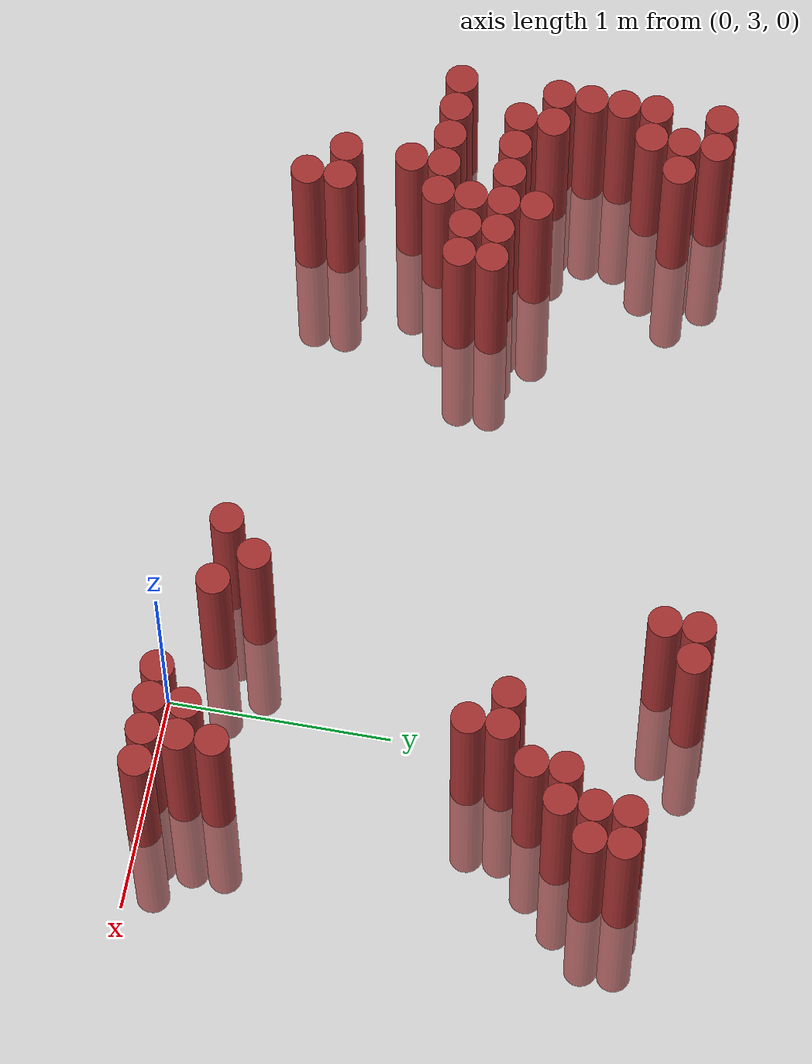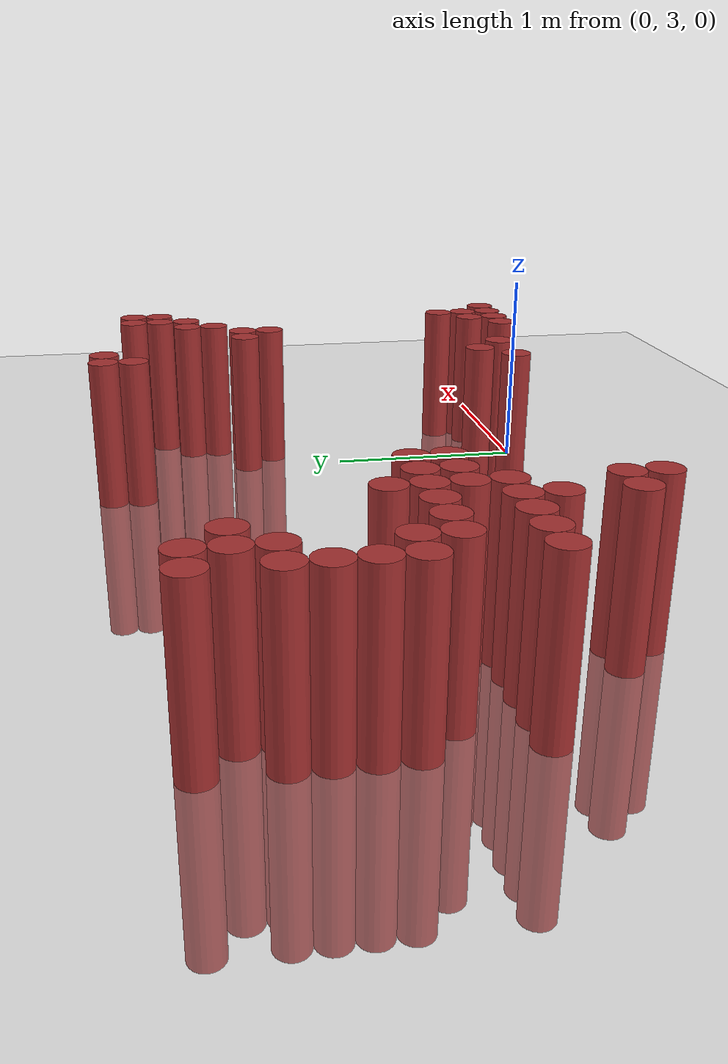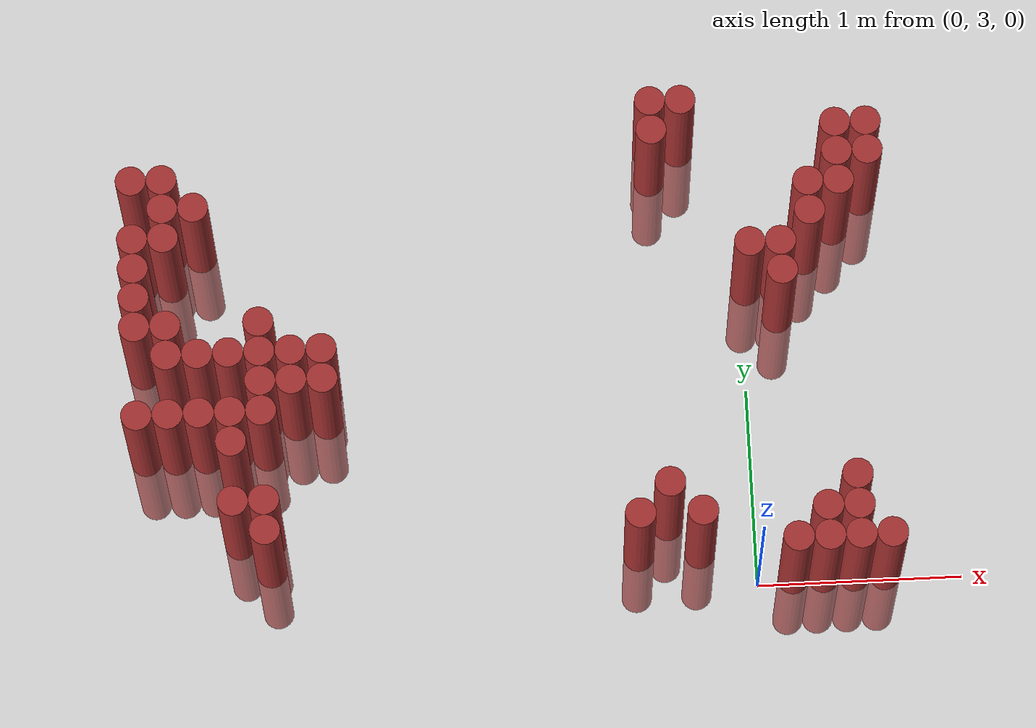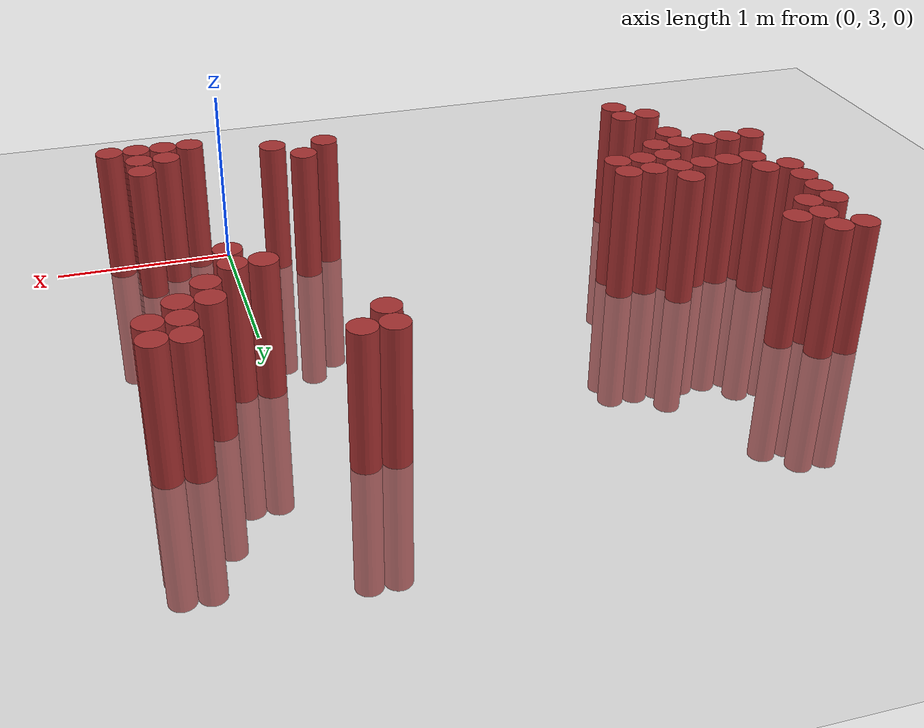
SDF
<sdf version="1.6">
 <world name="default">
  <model name="ground_plane">
   <static>1</static>
   <link name="link">
    <collision name="collision">
     <geometry><plane><normal>0 0 1</normal><size>100 100</size></plane></geometry>
     <surface><friction><ode><mu>100</mu><mu2>50</mu2></ode></friction></surface>
    </collision>
    <visual name="visual">
     <cast_shadows>0</cast_shadows>
     <geometry><plane><normal>0 0 1</normal><size>100 100</size></plane></geometry>
     <material>
      <script><uri>file://media/materials/scripts/gazebo.material</uri><name>Gazebo/Grey</name></script>
     </material>
    </visual>
   </link>
  </model>
  <model name="unit_cylinder_283">
   <static>1</static>
   <pose>-2.975000 3.775000 0.000000 0.000000 0.000000 0.000000</pose>
   <link name="link">
    <inertial>
     <mass>1</mass>
     <inertia><ixx>0.145833</ixx><ixy>0</ixy><ixz>0</ixz><iyy>0.145833</iyy><iyz>0</iyz><izz>0.125</izz></inertia>
    </inertial>
    <collision name="collision">
     <geometry><cylinder><radius>0.075000</radius><length>1.5</length></cylinder></geometry>
    </collision>
    <visual name="visual">
     <geometry><cylinder><radius>0.075000</radius><length>1.5</length></cylinder></geometry>
     <material>
      <ambient>0.648000 0.192000 0.192000 1</ambient>
      <diffuse>0.648000 0.192000 0.192000 1</diffuse>
     </material>
     <material>
      <script><name>Gazebo/Grey</name><uri>file://media/materials/scripts/gazebo.material</uri></script>
     </material>
    </visual>
   </link>
  </model>
  <model name="unit_cylinder_284">
   <static>1</static>
   <pose>-2.975000 4.225000 0.000000 0.000000 0.000000 0.000000</pose>
   <link name="link">
    <inertial>
     <mass>1</mass>
     <inertia><ixx>0.145833</ixx><ixy>0</ixy><ixz>0</ixz><iyy>0.145833</iyy><iyz>0</iyz><izz>0.125</izz></inertia>
    </inertial>
    <collision name="collision">
     <geometry><cylinder><radius>0.075000</radius><length>1.5</length></cylinder></geometry>
    </collision>
    <visual name="visual">
     <geometry><cylinder><radius>0.075000</radius><length>1.5</length></cylinder></geometry>
     <material>
      <ambient>0.648000 0.192000 0.192000 1</ambient>
      <diffuse>0.648000 0.192000 0.192000 1</diffuse>
     </material>
     <material>
      <script><name>Gazebo/Grey</name><uri>file://media/materials/scripts/gazebo.material</uri></script>
     </material>
    </visual>
   </link>
  </model>
  <model name="unit_cylinder_285">
   <static>1</static>
   <pose>-2.975000 4.375000 0.000000 0.000000 0.000000 0.000000</pose>
   <link name="link">
    <inertial>
     <mass>1</mass>
     <inertia><ixx>0.145833</ixx><ixy>0</ixy><ixz>0</ixz><iyy>0.145833</iyy><iyz>0</iyz><izz>0.125</izz></inertia>
    </inertial>
    <collision name="collision">
     <geometry><cylinder><radius>0.075000</radius><length>1.5</length></cylinder></geometry>
    </collision>
    <visual name="visual">
     <geometry><cylinder><radius>0.075000</radius><length>1.5</length></cylinder></geometry>
     <material>
      <ambient>0.648000 0.192000 0.192000 1</ambient>
      <diffuse>0.648000 0.192000 0.192000 1</diffuse>
     </material>
     <material>
      <script><name>Gazebo/Grey</name><uri>file://media/materials/scripts/gazebo.material</uri></script>
     </material>
    </visual>
   </link>
  </model>
  <model name="unit_cylinder_286">
   <static>1</static>
   <pose>-2.975000 4.525000 0.000000 0.000000 0.000000 0.000000</pose>
   <link name="link">
    <inertial>
     <mass>1</mass>
     <inertia><ixx>0.145833</ixx><ixy>0</ixy><ixz>0</ixz><iyy>0.145833</iyy><iyz>0</iyz><izz>0.125</izz></inertia>
    </inertial>
    <collision name="collision">
     <geometry><cylinder><radius>0.075000</radius><length>1.5</length></cylinder></geometry>
    </collision>
    <visual name="visual">
     <geometry><cylinder><radius>0.075000</radius><length>1.5</length></cylinder></geometry>
     <material>
      <ambient>0.648000 0.192000 0.192000 1</ambient>
      <diffuse>0.648000 0.192000 0.192000 1</diffuse>
     </material>
     <material>
      <script><name>Gazebo/Grey</name><uri>file://media/materials/scripts/gazebo.material</uri></script>
     </material>
    </visual>
   </link>
  </model>
  <model name="unit_cylinder_287">
   <static>1</static>
   <pose>-2.975000 4.675000 0.000000 0.000000 0.000000 0.000000</pose>
   <link name="link">
    <inertial>
     <mass>1</mass>
     <inertia><ixx>0.145833</ixx><ixy>0</ixy><ixz>0</ixz><iyy>0.145833</iyy><iyz>0</iyz><izz>0.125</izz></inertia>
    </inertial>
    <collision name="collision">
     <geometry><cylinder><radius>0.075000</radius><length>1.5</length></cylinder></geometry>
    </collision>
    <visual name="visual">
     <geometry><cylinder><radius>0.075000</radius><length>1.5</length></cylinder></geometry>
     <material>
      <ambient>0.648000 0.192000 0.192000 1</ambient>
      <diffuse>0.648000 0.192000 0.192000 1</diffuse>
     </material>
     <material>
      <script><name>Gazebo/Grey</name><uri>file://media/materials/scripts/gazebo.material</uri></script>
     </material>
    </visual>
   </link>
  </model>
  <model name="unit_cylinder_288">
   <static>1</static>
   <pose>-2.975000 4.975000 0.000000 0.000000 0.000000 0.000000</pose>
   <link name="link">
    <inertial>
     <mass>1</mass>
     <inertia><ixx>0.145833</ixx><ixy>0</ixy><ixz>0</ixz><iyy>0.145833</iyy><iyz>0</iyz><izz>0.125</izz></inertia>
    </inertial>
    <collision name="collision">
     <geometry><cylinder><radius>0.075000</radius><length>1.5</length></cylinder></geometry>
    </collision>
    <visual name="visual">
     <geometry><cylinder><radius>0.075000</radius><length>1.5</length></cylinder></geometry>
     <material>
      <ambient>0.648000 0.192000 0.192000 1</ambient>
      <diffuse>0.648000 0.192000 0.192000 1</diffuse>
     </material>
     <material>
      <script><name>Gazebo/Grey</name><uri>file://media/materials/scripts/gazebo.material</uri></script>
     </material>
    </visual>
   </link>
  </model>
  <model name="unit_cylinder_289">
   <static>1</static>
   <pose>-2.825000 3.775000 0.000000 0.000000 0.000000 0.000000</pose>
   <link name="link">
    <inertial>
     <mass>1</mass>
     <inertia><ixx>0.145833</ixx><ixy>0</ixy><ixz>0</ixz><iyy>0.145833</iyy><iyz>0</iyz><izz>0.125</izz></inertia>
    </inertial>
    <collision name="collision">
     <geometry><cylinder><radius>0.075000</radius><length>1.5</length></cylinder></geometry>
    </collision>
    <visual name="visual">
     <geometry><cylinder><radius>0.075000</radius><length>1.5</length></cylinder></geometry>
     <material>
      <ambient>0.648000 0.192000 0.192000 1</ambient>
      <diffuse>0.648000 0.192000 0.192000 1</diffuse>
     </material>
     <material>
      <script><name>Gazebo/Grey</name><uri>file://media/materials/scripts/gazebo.material</uri></script>
     </material>
    </visual>
   </link>
  </model>
  <model name="unit_cylinder_290">
   <static>1</static>
   <pose>-2.825000 4.075000 0.000000 0.000000 0.000000 0.000000</pose>
   <link name="link">
    <inertial>
     <mass>1</mass>
     <inertia><ixx>0.145833</ixx><ixy>0</ixy><ixz>0</ixz><iyy>0.145833</iyy><iyz>0</iyz><izz>0.125</izz></inertia>
    </inertial>
    <collision name="collision">
     <geometry><cylinder><radius>0.075000</radius><length>1.5</length></cylinder></geometry>
    </collision>
    <visual name="visual">
     <geometry><cylinder><radius>0.075000</radius><length>1.5</length></cylinder></geometry>
     <material>
      <ambient>0.648000 0.192000 0.192000 1</ambient>
      <diffuse>0.648000 0.192000 0.192000 1</diffuse>
     </material>
     <material>
      <script><name>Gazebo/Grey</name><uri>file://media/materials/scripts/gazebo.material</uri></script>
     </material>
    </visual>
   </link>
  </model>
  <model name="unit_cylinder_291">
   <static>1</static>
   <pose>-2.825000 4.225000 0.000000 0.000000 0.000000 0.000000</pose>
   <link name="link">
    <inertial>
     <mass>1</mass>
     <inertia><ixx>0.145833</ixx><ixy>0</ixy><ixz>0</ixz><iyy>0.145833</iyy><iyz>0</iyz><izz>0.125</izz></inertia>
    </inertial>
    <collision name="collision">
     <geometry><cylinder><radius>0.075000</radius><length>1.5</length></cylinder></geometry>
    </collision>
    <visual name="visual">
     <geometry><cylinder><radius>0.075000</radius><length>1.5</length></cylinder></geometry>
     <material>
      <ambient>0.648000 0.192000 0.192000 1</ambient>
      <diffuse>0.648000 0.192000 0.192000 1</diffuse>
     </material>
     <material>
      <script><name>Gazebo/Grey</name><uri>file://media/materials/scripts/gazebo.material</uri></script>
     </material>
    </visual>
   </link>
  </model>
  <model name="unit_cylinder_292">
   <static>1</static>
   <pose>-2.825000 4.675000 0.000000 0.000000 0.000000 0.000000</pose>
   <link name="link">
    <inertial>
     <mass>1</mass>
     <inertia><ixx>0.145833</ixx><ixy>0</ixy><ixz>0</ixz><iyy>0.145833</iyy><iyz>0</iyz><izz>0.125</izz></inertia>
    </inertial>
    <collision name="collision">
     <geometry><cylinder><radius>0.075000</radius><length>1.5</length></cylinder></geometry>
    </collision>
    <visual name="visual">
     <geometry><cylinder><radius>0.075000</radius><length>1.5</length></cylinder></geometry>
     <material>
      <ambient>0.648000 0.192000 0.192000 1</ambient>
      <diffuse>0.648000 0.192000 0.192000 1</diffuse>
     </material>
     <material>
      <script><name>Gazebo/Grey</name><uri>file://media/materials/scripts/gazebo.material</uri></script>
     </material>
    </visual>
   </link>
  </model>
  <model name="unit_cylinder_293">
   <static>1</static>
   <pose>-2.825000 4.825000 0.000000 0.000000 0.000000 0.000000</pose>
   <link name="link">
    <inertial>
     <mass>1</mass>
     <inertia><ixx>0.145833</ixx><ixy>0</ixy><ixz>0</ixz><iyy>0.145833</iyy><iyz>0</iyz><izz>0.125</izz></inertia>
    </inertial>
    <collision name="collision">
     <geometry><cylinder><radius>0.075000</radius><length>1.5</length></cylinder></geometry>
    </collision>
    <visual name="visual">
     <geometry><cylinder><radius>0.075000</radius><length>1.5</length></cylinder></geometry>
     <material>
      <ambient>0.648000 0.192000 0.192000 1</ambient>
      <diffuse>0.648000 0.192000 0.192000 1</diffuse>
     </material>
     <material>
      <script><name>Gazebo/Grey</name><uri>file://media/materials/scripts/gazebo.material</uri></script>
     </material>
    </visual>
   </link>
  </model>
  <model name="unit_cylinder_294">
   <static>1</static>
   <pose>-2.825000 4.975000 0.000000 0.000000 0.000000 0.000000</pose>
   <link name="link">
    <inertial>
     <mass>1</mass>
     <inertia><ixx>0.145833</ixx><ixy>0</ixy><ixz>0</ixz><iyy>0.145833</iyy><iyz>0</iyz><izz>0.125</izz></inertia>
    </inertial>
    <collision name="collision">
     <geometry><cylinder><radius>0.075000</radius><length>1.5</length></cylinder></geometry>
    </collision>
    <visual name="visual">
     <geometry><cylinder><radius>0.075000</radius><length>1.5</length></cylinder></geometry>
     <material>
      <ambient>0.648000 0.192000 0.192000 1</ambient>
      <diffuse>0.648000 0.192000 0.192000 1</diffuse>
     </material>
     <material>
      <script><name>Gazebo/Grey</name><uri>file://media/materials/scripts/gazebo.material</uri></script>
     </material>
    </visual>
   </link>
  </model>
  <model name="unit_cylinder_295">
   <static>1</static>
   <pose>-2.675000 3.775000 0.000000 0.000000 0.000000 0.000000</pose>
   <link name="link">
    <inertial>
     <mass>1</mass>
     <inertia><ixx>0.145833</ixx><ixy>0</ixy><ixz>0</ixz><iyy>0.145833</iyy><iyz>0</iyz><izz>0.125</izz></inertia>
    </inertial>
    <collision name="collision">
     <geometry><cylinder><radius>0.075000</radius><length>1.5</length></cylinder></geometry>
    </collision>
    <visual name="visual">
     <geometry><cylinder><radius>0.075000</radius><length>1.5</length></cylinder></geometry>
     <material>
      <ambient>0.648000 0.192000 0.192000 1</ambient>
      <diffuse>0.648000 0.192000 0.192000 1</diffuse>
     </material>
     <material>
      <script><name>Gazebo/Grey</name><uri>file://media/materials/scripts/gazebo.material</uri></script>
     </material>
    </visual>
   </link>
  </model>
  <model name="unit_cylinder_296">
   <static>1</static>
   <pose>-2.675000 4.075000 0.000000 0.000000 0.000000 0.000000</pose>
   <link name="link">
    <inertial>
     <mass>1</mass>
     <inertia><ixx>0.145833</ixx><ixy>0</ixy><ixz>0</ixz><iyy>0.145833</iyy><iyz>0</iyz><izz>0.125</izz></inertia>
    </inertial>
    <collision name="collision">
     <geometry><cylinder><radius>0.075000</radius><length>1.5</length></cylinder></geometry>
    </collision>
    <visual name="visual">
     <geometry><cylinder><radius>0.075000</radius><length>1.5</length></cylinder></geometry>
     <material>
      <ambient>0.648000 0.192000 0.192000 1</ambient>
      <diffuse>0.648000 0.192000 0.192000 1</diffuse>
     </material>
     <material>
      <script><name>Gazebo/Grey</name><uri>file://media/materials/scripts/gazebo.material</uri></script>
     </material>
    </visual>
   </link>
  </model>
  <model name="unit_cylinder_297">
   <static>1</static>
   <pose>-2.675000 4.825000 0.000000 0.000000 0.000000 0.000000</pose>
   <link name="link">
    <inertial>
     <mass>1</mass>
     <inertia><ixx>0.145833</ixx><ixy>0</ixy><ixz>0</ixz><iyy>0.145833</iyy><iyz>0</iyz><izz>0.125</izz></inertia>
    </inertial>
    <collision name="collision">
     <geometry><cylinder><radius>0.075000</radius><length>1.5</length></cylinder></geometry>
    </collision>
    <visual name="visual">
     <geometry><cylinder><radius>0.075000</radius><length>1.5</length></cylinder></geometry>
     <material>
      <ambient>0.648000 0.192000 0.192000 1</ambient>
      <diffuse>0.648000 0.192000 0.192000 1</diffuse>
     </material>
     <material>
      <script><name>Gazebo/Grey</name><uri>file://media/materials/scripts/gazebo.material</uri></script>
     </material>
    </visual>
   </link>
  </model>
  <model name="unit_cylinder_298">
   <static>1</static>
   <pose>-2.525000 3.325000 0.000000 0.000000 0.000000 0.000000</pose>
   <link name="link">
    <inertial>
     <mass>1</mass>
     <inertia><ixx>0.145833</ixx><ixy>0</ixy><ixz>0</ixz><iyy>0.145833</iyy><iyz>0</iyz><izz>0.125</izz></inertia>
    </inertial>
    <collision name="collision">
     <geometry><cylinder><radius>0.075000</radius><length>1.5</length></cylinder></geometry>
    </collision>
    <visual name="visual">
     <geometry><cylinder><radius>0.075000</radius><length>1.5</length></cylinder></geometry>
     <material>
      <ambient>0.648000 0.192000 0.192000 1</ambient>
      <diffuse>0.648000 0.192000 0.192000 1</diffuse>
     </material>
     <material>
      <script><name>Gazebo/Grey</name><uri>file://media/materials/scripts/gazebo.material</uri></script>
     </material>
    </visual>
   </link>
  </model>
  <model name="unit_cylinder_299">
   <static>1</static>
   <pose>-2.525000 3.625000 0.000000 0.000000 0.000000 0.000000</pose>
   <link name="link">
    <inertial>
     <mass>1</mass>
     <inertia><ixx>0.145833</ixx><ixy>0</ixy><ixz>0</ixz><iyy>0.145833</iyy><iyz>0</iyz><izz>0.125</izz></inertia>
    </inertial>
    <collision name="collision">
     <geometry><cylinder><radius>0.075000</radius><length>1.5</length></cylinder></geometry>
    </collision>
    <visual name="visual">
     <geometry><cylinder><radius>0.075000</radius><length>1.5</length></cylinder></geometry>
     <material>
      <ambient>0.648000 0.192000 0.192000 1</ambient>
      <diffuse>0.648000 0.192000 0.192000 1</diffuse>
     </material>
     <material>
      <script><name>Gazebo/Grey</name><uri>file://media/materials/scripts/gazebo.material</uri></script>
     </material>
    </visual>
   </link>
  </model>
  <model name="unit_cylinder_300">
   <static>1</static>
   <pose>-2.525000 3.775000 0.000000 0.000000 0.000000 0.000000</pose>
   <link name="link">
    <inertial>
     <mass>1</mass>
     <inertia><ixx>0.145833</ixx><ixy>0</ixy><ixz>0</ixz><iyy>0.145833</iyy><iyz>0</iyz><izz>0.125</izz></inertia>
    </inertial>
    <collision name="collision">
     <geometry><cylinder><radius>0.075000</radius><length>1.5</length></cylinder></geometry>
    </collision>
    <visual name="visual">
     <geometry><cylinder><radius>0.075000</radius><length>1.5</length></cylinder></geometry>
     <material>
      <ambient>0.648000 0.192000 0.192000 1</ambient>
      <diffuse>0.648000 0.192000 0.192000 1</diffuse>
     </material>
     <material>
      <script><name>Gazebo/Grey</name><uri>file://media/materials/scripts/gazebo.material</uri></script>
     </material>
    </visual>
   </link>
  </model>
  <model name="unit_cylinder_301">
   <static>1</static>
   <pose>-2.525000 4.075000 0.000000 0.000000 0.000000 0.000000</pose>
   <link name="link">
    <inertial>
     <mass>1</mass>
     <inertia><ixx>0.145833</ixx><ixy>0</ixy><ixz>0</ixz><iyy>0.145833</iyy><iyz>0</iyz><izz>0.125</izz></inertia>
    </inertial>
    <collision name="collision">
     <geometry><cylinder><radius>0.075000</radius><length>1.5</length></cylinder></geometry>
    </collision>
    <visual name="visual">
     <geometry><cylinder><radius>0.075000</radius><length>1.5</length></cylinder></geometry>
     <material>
      <ambient>0.648000 0.192000 0.192000 1</ambient>
      <diffuse>0.648000 0.192000 0.192000 1</diffuse>
     </material>
     <material>
      <script><name>Gazebo/Grey</name><uri>file://media/materials/scripts/gazebo.material</uri></script>
     </material>
    </visual>
   </link>
  </model>
  <model name="unit_cylinder_302">
   <static>1</static>
   <pose>-2.375000 3.175000 0.000000 0.000000 0.000000 0.000000</pose>
   <link name="link">
    <inertial>
     <mass>1</mass>
     <inertia><ixx>0.145833</ixx><ixy>0</ixy><ixz>0</ixz><iyy>0.145833</iyy><iyz>0</iyz><izz>0.125</izz></inertia>
    </inertial>
    <collision name="collision">
     <geometry><cylinder><radius>0.075000</radius><length>1.5</length></cylinder></geometry>
    </collision>
    <visual name="visual">
     <geometry><cylinder><radius>0.075000</radius><length>1.5</length></cylinder></geometry>
     <material>
      <ambient>0.648000 0.192000 0.192000 1</ambient>
      <diffuse>0.648000 0.192000 0.192000 1</diffuse>
     </material>
     <material>
      <script><name>Gazebo/Grey</name><uri>file://media/materials/scripts/gazebo.material</uri></script>
     </material>
    </visual>
   </link>
  </model>
  <model name="unit_cylinder_303">
   <static>1</static>
   <pose>-2.375000 3.325000 0.000000 0.000000 0.000000 0.000000</pose>
   <link name="link">
    <inertial>
     <mass>1</mass>
     <inertia><ixx>0.145833</ixx><ixy>0</ixy><ixz>0</ixz><iyy>0.145833</iyy><iyz>0</iyz><izz>0.125</izz></inertia>
    </inertial>
    <collision name="collision">
     <geometry><cylinder><radius>0.075000</radius><length>1.5</length></cylinder></geometry>
    </collision>
    <visual name="visual">
     <geometry><cylinder><radius>0.075000</radius><length>1.5</length></cylinder></geometry>
     <material>
      <ambient>0.648000 0.192000 0.192000 1</ambient>
      <diffuse>0.648000 0.192000 0.192000 1</diffuse>
     </material>
     <material>
      <script><name>Gazebo/Grey</name><uri>file://media/materials/scripts/gazebo.material</uri></script>
     </material>
    </visual>
   </link>
  </model>
  <model name="unit_cylinder_304">
   <static>1</static>
   <pose>-2.375000 3.775000 0.000000 0.000000 0.000000 0.000000</pose>
   <link name="link">
    <inertial>
     <mass>1</mass>
     <inertia><ixx>0.145833</ixx><ixy>0</ixy><ixz>0</ixz><iyy>0.145833</iyy><iyz>0</iyz><izz>0.125</izz></inertia>
    </inertial>
    <collision name="collision">
     <geometry><cylinder><radius>0.075000</radius><length>1.5</length></cylinder></geometry>
    </collision>
    <visual name="visual">
     <geometry><cylinder><radius>0.075000</radius><length>1.5</length></cylinder></geometry>
     <material>
      <ambient>0.648000 0.192000 0.192000 1</ambient>
      <diffuse>0.648000 0.192000 0.192000 1</diffuse>
     </material>
     <material>
      <script><name>Gazebo/Grey</name><uri>file://media/materials/scripts/gazebo.material</uri></script>
     </material>
    </visual>
   </link>
  </model>
  <model name="unit_cylinder_305">
   <static>1</static>
   <pose>-2.375000 3.925000 0.000000 0.000000 0.000000 0.000000</pose>
   <link name="link">
    <inertial>
     <mass>1</mass>
     <inertia><ixx>0.145833</ixx><ixy>0</ixy><ixz>0</ixz><iyy>0.145833</iyy><iyz>0</iyz><izz>0.125</izz></inertia>
    </inertial>
    <collision name="collision">
     <geometry><cylinder><radius>0.075000</radius><length>1.5</length></cylinder></geometry>
    </collision>
    <visual name="visual">
     <geometry><cylinder><radius>0.075000</radius><length>1.5</length></cylinder></geometry>
     <material>
      <ambient>0.648000 0.192000 0.192000 1</ambient>
      <diffuse>0.648000 0.192000 0.192000 1</diffuse>
     </material>
     <material>
      <script><name>Gazebo/Grey</name><uri>file://media/materials/scripts/gazebo.material</uri></script>
     </material>
    </visual>
   </link>
  </model>
  <model name="unit_cylinder_306">
   <static>1</static>
   <pose>-2.375000 4.075000 0.000000 0.000000 0.000000 0.000000</pose>
   <link name="link">
    <inertial>
     <mass>1</mass>
     <inertia><ixx>0.145833</ixx><ixy>0</ixy><ixz>0</ixz><iyy>0.145833</iyy><iyz>0</iyz><izz>0.125</izz></inertia>
    </inertial>
    <collision name="collision">
     <geometry><cylinder><radius>0.075000</radius><length>1.5</length></cylinder></geometry>
    </collision>
    <visual name="visual">
     <geometry><cylinder><radius>0.075000</radius><length>1.5</length></cylinder></geometry>
     <material>
      <ambient>0.648000 0.192000 0.192000 1</ambient>
      <diffuse>0.648000 0.192000 0.192000 1</diffuse>
     </material>
     <material>
      <script><name>Gazebo/Grey</name><uri>file://media/materials/scripts/gazebo.material</uri></script>
     </material>
    </visual>
   </link>
  </model>
  <model name="unit_cylinder_307">
   <static>1</static>
   <pose>-2.375000 4.225000 0.000000 0.000000 0.000000 0.000000</pose>
   <link name="link">
    <inertial>
     <mass>1</mass>
     <inertia><ixx>0.145833</ixx><ixy>0</ixy><ixz>0</ixz><iyy>0.145833</iyy><iyz>0</iyz><izz>0.125</izz></inertia>
    </inertial>
    <collision name="collision">
     <geometry><cylinder><radius>0.075000</radius><length>1.5</length></cylinder></geometry>
    </collision>
    <visual name="visual">
     <geometry><cylinder><radius>0.075000</radius><length>1.5</length></cylinder></geometry>
     <material>
      <ambient>0.648000 0.192000 0.192000 1</ambient>
      <diffuse>0.648000 0.192000 0.192000 1</diffuse>
     </material>
     <material>
      <script><name>Gazebo/Grey</name><uri>file://media/materials/scripts/gazebo.material</uri></script>
     </material>
    </visual>
   </link>
  </model>
  <model name="unit_cylinder_308">
   <static>1</static>
   <pose>-2.225000 3.925000 0.000000 0.000000 0.000000 0.000000</pose>
   <link name="link">
    <inertial>
     <mass>1</mass>
     <inertia><ixx>0.145833</ixx><ixy>0</ixy><ixz>0</ixz><iyy>0.145833</iyy><iyz>0</iyz><izz>0.125</izz></inertia>
    </inertial>
    <collision name="collision">
     <geometry><cylinder><radius>0.075000</radius><length>1.5</length></cylinder></geometry>
    </collision>
    <visual name="visual">
     <geometry><cylinder><radius>0.075000</radius><length>1.5</length></cylinder></geometry>
     <material>
      <ambient>0.648000 0.192000 0.192000 1</ambient>
      <diffuse>0.648000 0.192000 0.192000 1</diffuse>
     </material>
     <material>
      <script><name>Gazebo/Grey</name><uri>file://media/materials/scripts/gazebo.material</uri></script>
     </material>
    </visual>
   </link>
  </model>
  <model name="unit_cylinder_309">
   <static>1</static>
   <pose>-2.225000 4.075000 0.000000 0.000000 0.000000 0.000000</pose>
   <link name="link">
    <inertial>
     <mass>1</mass>
     <inertia><ixx>0.145833</ixx><ixy>0</ixy><ixz>0</ixz><iyy>0.145833</iyy><iyz>0</iyz><izz>0.125</izz></inertia>
    </inertial>
    <collision name="collision">
     <geometry><cylinder><radius>0.075000</radius><length>1.5</length></cylinder></geometry>
    </collision>
    <visual name="visual">
     <geometry><cylinder><radius>0.075000</radius><length>1.5</length></cylinder></geometry>
     <material>
      <ambient>0.648000 0.192000 0.192000 1</ambient>
      <diffuse>0.648000 0.192000 0.192000 1</diffuse>
     </material>
     <material>
      <script><name>Gazebo/Grey</name><uri>file://media/materials/scripts/gazebo.material</uri></script>
     </material>
    </visual>
   </link>
  </model>
  <model name="unit_cylinder_312">
   <static>1</static>
   <pose>-2.075000 3.925000 0.000000 0.000000 0.000000 0.000000</pose>
   <link name="link">
    <inertial>
     <mass>1</mass>
     <inertia><ixx>0.145833</ixx><ixy>0</ixy><ixz>0</ixz><iyy>0.145833</iyy><iyz>0</iyz><izz>0.125</izz></inertia>
    </inertial>
    <collision name="collision">
     <geometry><cylinder><radius>0.075000</radius><length>1.5</length></cylinder></geometry>
    </collision>
    <visual name="visual">
     <geometry><cylinder><radius>0.075000</radius><length>1.5</length></cylinder></geometry>
     <material>
      <ambient>0.648000 0.192000 0.192000 1</ambient>
      <diffuse>0.648000 0.192000 0.192000 1</diffuse>
     </material>
     <material>
      <script><name>Gazebo/Grey</name><uri>file://media/materials/scripts/gazebo.material</uri></script>
     </material>
    </visual>
   </link>
  </model>
  <model name="unit_cylinder_313">
   <static>1</static>
   <pose>-2.075000 4.075000 0.000000 0.000000 0.000000 0.000000</pose>
   <link name="link">
    <inertial>
     <mass>1</mass>
     <inertia><ixx>0.145833</ixx><ixy>0</ixy><ixz>0</ixz><iyy>0.145833</iyy><iyz>0</iyz><izz>0.125</izz></inertia>
    </inertial>
    <collision name="collision">
     <geometry><cylinder><radius>0.075000</radius><length>1.5</length></cylinder></geometry>
    </collision>
    <visual name="visual">
     <geometry><cylinder><radius>0.075000</radius><length>1.5</length></cylinder></geometry>
     <material>
      <ambient>0.648000 0.192000 0.192000 1</ambient>
      <diffuse>0.648000 0.192000 0.192000 1</diffuse>
     </material>
     <material>
      <script><name>Gazebo/Grey</name><uri>file://media/materials/scripts/gazebo.material</uri></script>
     </material>
    </visual>
   </link>
  </model>
  <model name="unit_cylinder_349">
   <static>1</static>
   <pose>-0.575000 3.175000 0.000000 0.000000 0.000000 0.000000</pose>
   <link name="link">
    <inertial>
     <mass>1</mass>
     <inertia><ixx>0.145833</ixx><ixy>0</ixy><ixz>0</ixz><iyy>0.145833</iyy><iyz>0</iyz><izz>0.125</izz></inertia>
    </inertial>
    <collision name="collision">
     <geometry><cylinder><radius>0.075000</radius><length>1.5</length></cylinder></geometry>
    </collision>
    <visual name="visual">
     <geometry><cylinder><radius>0.075000</radius><length>1.5</length></cylinder></geometry>
     <material>
      <ambient>0.648000 0.192000 0.192000 1</ambient>
      <diffuse>0.648000 0.192000 0.192000 1</diffuse>
     </material>
     <material>
      <script><name>Gazebo/Grey</name><uri>file://media/materials/scripts/gazebo.material</uri></script>
     </material>
    </visual>
   </link>
  </model>
  <model name="unit_cylinder_351">
   <static>1</static>
   <pose>-0.425000 3.325000 0.000000 0.000000 0.000000 0.000000</pose>
   <link name="link">
    <inertial>
     <mass>1</mass>
     <inertia><ixx>0.145833</ixx><ixy>0</ixy><ixz>0</ixz><iyy>0.145833</iyy><iyz>0</iyz><izz>0.125</izz></inertia>
    </inertial>
    <collision name="collision">
     <geometry><cylinder><radius>0.075000</radius><length>1.5</length></cylinder></geometry>
    </collision>
    <visual name="visual">
     <geometry><cylinder><radius>0.075000</radius><length>1.5</length></cylinder></geometry>
     <material>
      <ambient>0.648000 0.192000 0.192000 1</ambient>
      <diffuse>0.648000 0.192000 0.192000 1</diffuse>
     </material>
     <material>
      <script><name>Gazebo/Grey</name><uri>file://media/materials/scripts/gazebo.material</uri></script>
     </material>
    </visual>
   </link>
  </model>
  <model name="unit_cylinder_352">
   <static>1</static>
   <pose>-0.425000 5.125000 0.000000 0.000000 0.000000 0.000000</pose>
   <link name="link">
    <inertial>
     <mass>1</mass>
     <inertia><ixx>0.145833</ixx><ixy>0</ixy><ixz>0</ixz><iyy>0.145833</iyy><iyz>0</iyz><izz>0.125</izz></inertia>
    </inertial>
    <collision name="collision">
     <geometry><cylinder><radius>0.075000</radius><length>1.5</length></cylinder></geometry>
    </collision>
    <visual name="visual">
     <geometry><cylinder><radius>0.075000</radius><length>1.5</length></cylinder></geometry>
     <material>
      <ambient>0.648000 0.192000 0.192000 1</ambient>
      <diffuse>0.648000 0.192000 0.192000 1</diffuse>
     </material>
     <material>
      <script><name>Gazebo/Grey</name><uri>file://media/materials/scripts/gazebo.material</uri></script>
     </material>
    </visual>
   </link>
  </model>
  <model name="unit_cylinder_353">
   <static>1</static>
   <pose>-0.425000 5.275000 0.000000 0.000000 0.000000 0.000000</pose>
   <link name="link">
    <inertial>
     <mass>1</mass>
     <inertia><ixx>0.145833</ixx><ixy>0</ixy><ixz>0</ixz><iyy>0.145833</iyy><iyz>0</iyz><izz>0.125</izz></inertia>
    </inertial>
    <collision name="collision">
     <geometry><cylinder><radius>0.075000</radius><length>1.5</length></cylinder></geometry>
    </collision>
    <visual name="visual">
     <geometry><cylinder><radius>0.075000</radius><length>1.5</length></cylinder></geometry>
     <material>
      <ambient>0.648000 0.192000 0.192000 1</ambient>
      <diffuse>0.648000 0.192000 0.192000 1</diffuse>
     </material>
     <material>
      <script><name>Gazebo/Grey</name><uri>file://media/materials/scripts/gazebo.material</uri></script>
     </material>
    </visual>
   </link>
  </model>
  <model name="unit_cylinder_354">
   <static>1</static>
   <pose>-0.275000 3.175000 0.000000 0.000000 0.000000 0.000000</pose>
   <link name="link">
    <inertial>
     <mass>1</mass>
     <inertia><ixx>0.145833</ixx><ixy>0</ixy><ixz>0</ixz><iyy>0.145833</iyy><iyz>0</iyz><izz>0.125</izz></inertia>
    </inertial>
    <collision name="collision">
     <geometry><cylinder><radius>0.075000</radius><length>1.5</length></cylinder></geometry>
    </collision>
    <visual name="visual">
     <geometry><cylinder><radius>0.075000</radius><length>1.5</length></cylinder></geometry>
     <material>
      <ambient>0.648000 0.192000 0.192000 1</ambient>
      <diffuse>0.648000 0.192000 0.192000 1</diffuse>
     </material>
     <material>
      <script><name>Gazebo/Grey</name><uri>file://media/materials/scripts/gazebo.material</uri></script>
     </material>
    </visual>
   </link>
  </model>
  <model name="unit_cylinder_355">
   <static>1</static>
   <pose>-0.275000 5.275000 0.000000 0.000000 0.000000 0.000000</pose>
   <link name="link">
    <inertial>
     <mass>1</mass>
     <inertia><ixx>0.145833</ixx><ixy>0</ixy><ixz>0</ixz><iyy>0.145833</iyy><iyz>0</iyz><izz>0.125</izz></inertia>
    </inertial>
    <collision name="collision">
     <geometry><cylinder><radius>0.075000</radius><length>1.5</length></cylinder></geometry>
    </collision>
    <visual name="visual">
     <geometry><cylinder><radius>0.075000</radius><length>1.5</length></cylinder></geometry>
     <material>
      <ambient>0.648000 0.192000 0.192000 1</ambient>
      <diffuse>0.648000 0.192000 0.192000 1</diffuse>
     </material>
     <material>
      <script><name>Gazebo/Grey</name><uri>file://media/materials/scripts/gazebo.material</uri></script>
     </material>
    </visual>
   </link>
  </model>
  <model name="unit_cylinder_366">
   <static>1</static>
   <pose>0.025000 4.525000 0.000000 0.000000 0.000000 0.000000</pose>
   <link name="link">
    <inertial>
     <mass>1</mass>
     <inertia><ixx>0.145833</ixx><ixy>0</ixy><ixz>0</ixz><iyy>0.145833</iyy><iyz>0</iyz><izz>0.125</izz></inertia>
    </inertial>
    <collision name="collision">
     <geometry><cylinder><radius>0.075000</radius><length>1.5</length></cylinder></geometry>
    </collision>
    <visual name="visual">
     <geometry><cylinder><radius>0.075000</radius><length>1.5</length></cylinder></geometry>
     <material>
      <ambient>0.648000 0.192000 0.192000 1</ambient>
      <diffuse>0.648000 0.192000 0.192000 1</diffuse>
     </material>
     <material>
      <script><name>Gazebo/Grey</name><uri>file://media/materials/scripts/gazebo.material</uri></script>
     </material>
    </visual>
   </link>
  </model>
  <model name="unit_cylinder_377">
   <static>1</static>
   <pose>0.175000 3.025000 0.000000 0.000000 0.000000 0.000000</pose>
   <link name="link">
    <inertial>
     <mass>1</mass>
     <inertia><ixx>0.145833</ixx><ixy>0</ixy><ixz>0</ixz><iyy>0.145833</iyy><iyz>0</iyz><izz>0.125</izz></inertia>
    </inertial>
    <collision name="collision">
     <geometry><cylinder><radius>0.075000</radius><length>1.5</length></cylinder></geometry>
    </collision>
    <visual name="visual">
     <geometry><cylinder><radius>0.075000</radius><length>1.5</length></cylinder></geometry>
     <material>
      <ambient>0.648000 0.192000 0.192000 1</ambient>
      <diffuse>0.648000 0.192000 0.192000 1</diffuse>
     </material>
     <material>
      <script><name>Gazebo/Grey</name><uri>file://media/materials/scripts/gazebo.material</uri></script>
     </material>
    </visual>
   </link>
  </model>
  <model name="unit_cylinder_378">
   <static>1</static>
   <pose>0.175000 4.375000 0.000000 0.000000 0.000000 0.000000</pose>
   <link name="link">
    <inertial>
     <mass>1</mass>
     <inertia><ixx>0.145833</ixx><ixy>0</ixy><ixz>0</ixz><iyy>0.145833</iyy><iyz>0</iyz><izz>0.125</izz></inertia>
    </inertial>
    <collision name="collision">
     <geometry><cylinder><radius>0.075000</radius><length>1.5</length></cylinder></geometry>
    </collision>
    <visual name="visual">
     <geometry><cylinder><radius>0.075000</radius><length>1.5</length></cylinder></geometry>
     <material>
      <ambient>0.648000 0.192000 0.192000 1</ambient>
      <diffuse>0.648000 0.192000 0.192000 1</diffuse>
     </material>
     <material>
      <script><name>Gazebo/Grey</name><uri>file://media/materials/scripts/gazebo.material</uri></script>
     </material>
    </visual>
   </link>
  </model>
  <model name="unit_cylinder_379">
   <static>1</static>
   <pose>0.175000 4.525000 0.000000 0.000000 0.000000 0.000000</pose>
   <link name="link">
    <inertial>
     <mass>1</mass>
     <inertia><ixx>0.145833</ixx><ixy>0</ixy><ixz>0</ixz><iyy>0.145833</iyy><iyz>0</iyz><izz>0.125</izz></inertia>
    </inertial>
    <collision name="collision">
     <geometry><cylinder><radius>0.075000</radius><length>1.5</length></cylinder></geometry>
    </collision>
    <visual name="visual">
     <geometry><cylinder><radius>0.075000</radius><length>1.5</length></cylinder></geometry>
     <material>
      <ambient>0.648000 0.192000 0.192000 1</ambient>
      <diffuse>0.648000 0.192000 0.192000 1</diffuse>
     </material>
     <material>
      <script><name>Gazebo/Grey</name><uri>file://media/materials/scripts/gazebo.material</uri></script>
     </material>
    </visual>
   </link>
  </model>
  <model name="unit_cylinder_386">
   <static>1</static>
   <pose>0.325000 3.025000 0.000000 0.000000 0.000000 0.000000</pose>
   <link name="link">
    <inertial>
     <mass>1</mass>
     <inertia><ixx>0.145833</ixx><ixy>0</ixy><ixz>0</ixz><iyy>0.145833</iyy><iyz>0</iyz><izz>0.125</izz></inertia>
    </inertial>
    <collision name="collision">
     <geometry><cylinder><radius>0.075000</radius><length>1.5</length></cylinder></geometry>
    </collision>
    <visual name="visual">
     <geometry><cylinder><radius>0.075000</radius><length>1.5</length></cylinder></geometry>
     <material>
      <ambient>0.648000 0.192000 0.192000 1</ambient>
      <diffuse>0.648000 0.192000 0.192000 1</diffuse>
     </material>
     <material>
      <script><name>Gazebo/Grey</name><uri>file://media/materials/scripts/gazebo.material</uri></script>
     </material>
    </visual>
   </link>
  </model>
  <model name="unit_cylinder_387">
   <static>1</static>
   <pose>0.325000 3.175000 0.000000 0.000000 0.000000 0.000000</pose>
   <link name="link">
    <inertial>
     <mass>1</mass>
     <inertia><ixx>0.145833</ixx><ixy>0</ixy><ixz>0</ixz><iyy>0.145833</iyy><iyz>0</iyz><izz>0.125</izz></inertia>
    </inertial>
    <collision name="collision">
     <geometry><cylinder><radius>0.075000</radius><length>1.5</length></cylinder></geometry>
    </collision>
    <visual name="visual">
     <geometry><cylinder><radius>0.075000</radius><length>1.5</length></cylinder></geometry>
     <material>
      <ambient>0.648000 0.192000 0.192000 1</ambient>
      <diffuse>0.648000 0.192000 0.192000 1</diffuse>
     </material>
     <material>
      <script><name>Gazebo/Grey</name><uri>file://media/materials/scripts/gazebo.material</uri></script>
     </material>
    </visual>
   </link>
  </model>
  <model name="unit_cylinder_388">
   <static>1</static>
   <pose>0.325000 4.675000 0.000000 0.000000 0.000000 0.000000</pose>
   <link name="link">
    <inertial>
     <mass>1</mass>
     <inertia><ixx>0.145833</ixx><ixy>0</ixy><ixz>0</ixz><iyy>0.145833</iyy><iyz>0</iyz><izz>0.125</izz></inertia>
    </inertial>
    <collision name="collision">
     <geometry><cylinder><radius>0.075000</radius><length>1.5</length></cylinder></geometry>
    </collision>
    <visual name="visual">
     <geometry><cylinder><radius>0.075000</radius><length>1.5</length></cylinder></geometry>
     <material>
      <ambient>0.648000 0.192000 0.192000 1</ambient>
      <diffuse>0.648000 0.192000 0.192000 1</diffuse>
     </material>
     <material>
      <script><name>Gazebo/Grey</name><uri>file://media/materials/scripts/gazebo.material</uri></script>
     </material>
    </visual>
   </link>
  </model>
  <model name="unit_cylinder_389">
   <static>1</static>
   <pose>0.325000 4.825000 0.000000 0.000000 0.000000 0.000000</pose>
   <link name="link">
    <inertial>
     <mass>1</mass>
     <inertia><ixx>0.145833</ixx><ixy>0</ixy><ixz>0</ixz><iyy>0.145833</iyy><iyz>0</iyz><izz>0.125</izz></inertia>
    </inertial>
    <collision name="collision">
     <geometry><cylinder><radius>0.075000</radius><length>1.5</length></cylinder></geometry>
    </collision>
    <visual name="visual">
     <geometry><cylinder><radius>0.075000</radius><length>1.5</length></cylinder></geometry>
     <material>
      <ambient>0.648000 0.192000 0.192000 1</ambient>
      <diffuse>0.648000 0.192000 0.192000 1</diffuse>
     </material>
     <material>
      <script><name>Gazebo/Grey</name><uri>file://media/materials/scripts/gazebo.material</uri></script>
     </material>
    </visual>
   </link>
  </model>
  <model name="unit_cylinder_394">
   <static>1</static>
   <pose>0.475000 3.025000 0.000000 0.000000 0.000000 0.000000</pose>
   <link name="link">
    <inertial>
     <mass>1</mass>
     <inertia><ixx>0.145833</ixx><ixy>0</ixy><ixz>0</ixz><iyy>0.145833</iyy><iyz>0</iyz><izz>0.125</izz></inertia>
    </inertial>
    <collision name="collision">
     <geometry><cylinder><radius>0.075000</radius><length>1.5</length></cylinder></geometry>
    </collision>
    <visual name="visual">
     <geometry><cylinder><radius>0.075000</radius><length>1.5</length></cylinder></geometry>
     <material>
      <ambient>0.648000 0.192000 0.192000 1</ambient>
      <diffuse>0.648000 0.192000 0.192000 1</diffuse>
     </material>
     <material>
      <script><name>Gazebo/Grey</name><uri>file://media/materials/scripts/gazebo.material</uri></script>
     </material>
    </visual>
   </link>
  </model>
  <model name="unit_cylinder_395">
   <static>1</static>
   <pose>0.475000 3.175000 0.000000 0.000000 0.000000 0.000000</pose>
   <link name="link">
    <inertial>
     <mass>1</mass>
     <inertia><ixx>0.145833</ixx><ixy>0</ixy><ixz>0</ixz><iyy>0.145833</iyy><iyz>0</iyz><izz>0.125</izz></inertia>
    </inertial>
    <collision name="collision">
     <geometry><cylinder><radius>0.075000</radius><length>1.5</length></cylinder></geometry>
    </collision>
    <visual name="visual">
     <geometry><cylinder><radius>0.075000</radius><length>1.5</length></cylinder></geometry>
     <material>
      <ambient>0.648000 0.192000 0.192000 1</ambient>
      <diffuse>0.648000 0.192000 0.192000 1</diffuse>
     </material>
     <material>
      <script><name>Gazebo/Grey</name><uri>file://media/materials/scripts/gazebo.material</uri></script>
     </material>
    </visual>
   </link>
  </model>
  <model name="unit_cylinder_396">
   <static>1</static>
   <pose>0.475000 3.325000 0.000000 0.000000 0.000000 0.000000</pose>
   <link name="link">
    <inertial>
     <mass>1</mass>
     <inertia><ixx>0.145833</ixx><ixy>0</ixy><ixz>0</ixz><iyy>0.145833</iyy><iyz>0</iyz><izz>0.125</izz></inertia>
    </inertial>
    <collision name="collision">
     <geometry><cylinder><radius>0.075000</radius><length>1.5</length></cylinder></geometry>
    </collision>
    <visual name="visual">
     <geometry><cylinder><radius>0.075000</radius><length>1.5</length></cylinder></geometry>
     <material>
      <ambient>0.648000 0.192000 0.192000 1</ambient>
      <diffuse>0.648000 0.192000 0.192000 1</diffuse>
     </material>
     <material>
      <script><name>Gazebo/Grey</name><uri>file://media/materials/scripts/gazebo.material</uri></script>
     </material>
    </visual>
   </link>
  </model>
  <model name="unit_cylinder_397">
   <static>1</static>
   <pose>0.475000 4.825000 0.000000 0.000000 0.000000 0.000000</pose>
   <link name="link">
    <inertial>
     <mass>1</mass>
     <inertia><ixx>0.145833</ixx><ixy>0</ixy><ixz>0</ixz><iyy>0.145833</iyy><iyz>0</iyz><izz>0.125</izz></inertia>
    </inertial>
    <collision name="collision">
     <geometry><cylinder><radius>0.075000</radius><length>1.5</length></cylinder></geometry>
    </collision>
    <visual name="visual">
     <geometry><cylinder><radius>0.075000</radius><length>1.5</length></cylinder></geometry>
     <material>
      <ambient>0.648000 0.192000 0.192000 1</ambient>
      <diffuse>0.648000 0.192000 0.192000 1</diffuse>
     </material>
     <material>
      <script><name>Gazebo/Grey</name><uri>file://media/materials/scripts/gazebo.material</uri></script>
     </material>
    </visual>
   </link>
  </model>
  <model name="unit_cylinder_398">
   <static>1</static>
   <pose>0.475000 4.975000 0.000000 0.000000 0.000000 0.000000</pose>
   <link name="link">
    <inertial>
     <mass>1</mass>
     <inertia><ixx>0.145833</ixx><ixy>0</ixy><ixz>0</ixz><iyy>0.145833</iyy><iyz>0</iyz><izz>0.125</izz></inertia>
    </inertial>
    <collision name="collision">
     <geometry><cylinder><radius>0.075000</radius><length>1.5</length></cylinder></geometry>
    </collision>
    <visual name="visual">
     <geometry><cylinder><radius>0.075000</radius><length>1.5</length></cylinder></geometry>
     <material>
      <ambient>0.648000 0.192000 0.192000 1</ambient>
      <diffuse>0.648000 0.192000 0.192000 1</diffuse>
     </material>
     <material>
      <script><name>Gazebo/Grey</name><uri>file://media/materials/scripts/gazebo.material</uri></script>
     </material>
    </visual>
   </link>
  </model>
  <model name="unit_cylinder_399">
   <static>1</static>
   <pose>0.475000 5.125000 0.000000 0.000000 0.000000 0.000000</pose>
   <link name="link">
    <inertial>
     <mass>1</mass>
     <inertia><ixx>0.145833</ixx><ixy>0</ixy><ixz>0</ixz><iyy>0.145833</iyy><iyz>0</iyz><izz>0.125</izz></inertia>
    </inertial>
    <collision name="collision">
     <geometry><cylinder><radius>0.075000</radius><length>1.5</length></cylinder></geometry>
    </collision>
    <visual name="visual">
     <geometry><cylinder><radius>0.075000</radius><length>1.5</length></cylinder></geometry>
     <material>
      <ambient>0.648000 0.192000 0.192000 1</ambient>
      <diffuse>0.648000 0.192000 0.192000 1</diffuse>
     </material>
     <material>
      <script><name>Gazebo/Grey</name><uri>file://media/materials/scripts/gazebo.material</uri></script>
     </material>
    </visual>
   </link>
  </model>
  <model name="unit_cylinder_401">
   <static>1</static>
   <pose>0.625000 3.025000 0.000000 0.000000 0.000000 0.000000</pose>
   <link name="link">
    <inertial>
     <mass>1</mass>
     <inertia><ixx>0.145833</ixx><ixy>0</ixy><ixz>0</ixz><iyy>0.145833</iyy><iyz>0</iyz><izz>0.125</izz></inertia>
    </inertial>
    <collision name="collision">
     <geometry><cylinder><radius>0.075000</radius><length>1.5</length></cylinder></geometry>
    </collision>
    <visual name="visual">
     <geometry><cylinder><radius>0.075000</radius><length>1.5</length></cylinder></geometry>
     <material>
      <ambient>0.648000 0.192000 0.192000 1</ambient>
      <diffuse>0.648000 0.192000 0.192000 1</diffuse>
     </material>
     <material>
      <script><name>Gazebo/Grey</name><uri>file://media/materials/scripts/gazebo.material</uri></script>
     </material>
    </visual>
   </link>
  </model>
  <model name="unit_cylinder_402">
   <static>1</static>
   <pose>0.625000 4.975000 0.000000 0.000000 0.000000 0.000000</pose>
   <link name="link">
    <inertial>
     <mass>1</mass>
     <inertia><ixx>0.145833</ixx><ixy>0</ixy><ixz>0</ixz><iyy>0.145833</iyy><iyz>0</iyz><izz>0.125</izz></inertia>
    </inertial>
    <collision name="collision">
     <geometry><cylinder><radius>0.075000</radius><length>1.5</length></cylinder></geometry>
    </collision>
    <visual name="visual">
     <geometry><cylinder><radius>0.075000</radius><length>1.5</length></cylinder></geometry>
     <material>
      <ambient>0.648000 0.192000 0.192000 1</ambient>
      <diffuse>0.648000 0.192000 0.192000 1</diffuse>
     </material>
     <material>
      <script><name>Gazebo/Grey</name><uri>file://media/materials/scripts/gazebo.material</uri></script>
     </material>
    </visual>
   </link>
  </model>
  <model name="unit_cylinder_403">
   <static>1</static>
   <pose>0.625000 5.125000 0.000000 0.000000 0.000000 0.000000</pose>
   <link name="link">
    <inertial>
     <mass>1</mass>
     <inertia><ixx>0.145833</ixx><ixy>0</ixy><ixz>0</ixz><iyy>0.145833</iyy><iyz>0</iyz><izz>0.125</izz></inertia>
    </inertial>
    <collision name="collision">
     <geometry><cylinder><radius>0.075000</radius><length>1.5</length></cylinder></geometry>
    </collision>
    <visual name="visual">
     <geometry><cylinder><radius>0.075000</radius><length>1.5</length></cylinder></geometry>
     <material>
      <ambient>0.648000 0.192000 0.192000 1</ambient>
      <diffuse>0.648000 0.192000 0.192000 1</diffuse>
     </material>
     <material>
      <script><name>Gazebo/Grey</name><uri>file://media/materials/scripts/gazebo.material</uri></script>
     </material>
    </visual>
   </link>
  </model>
 </world>
</sdf>
